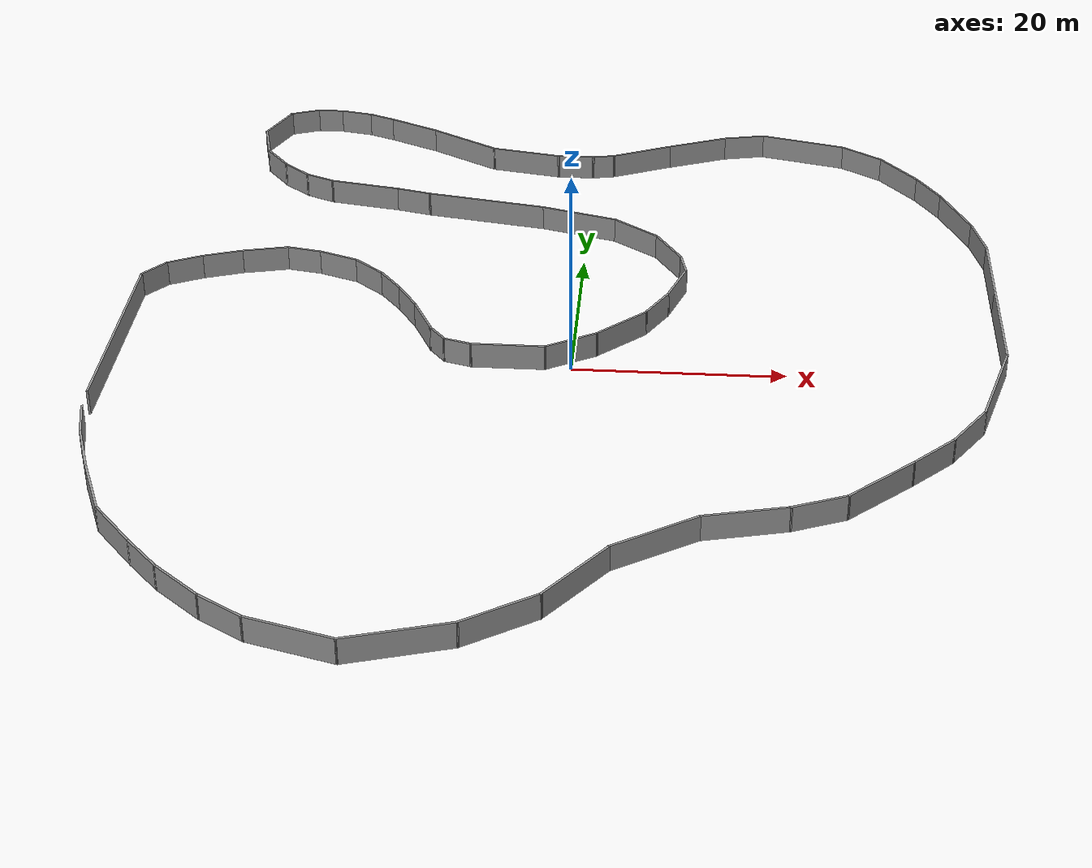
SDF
<?xml version='1.0'?>
<sdf version='1.4'>
  <model name='CircuitoFinalLinea'>
    <link name='Wall_10'>
      <collision name='Wall_10_Collision'>
        <geometry>
          <box>
            <size>4.27377 0.2 2.5</size>
          </box>
        </geometry>
        <pose>0 0 1.25 0 -0 0</pose>
      </collision>
      <visual name='Wall_10_Visual'>
        <pose>0 0 1.25 0 -0 0</pose>
        <geometry>
          <box>
            <size>4.27377 0.2 2.5</size>
          </box>
        </geometry>
        <material>
          <script>
            <uri>file://media/materials/scripts/gazebo.material</uri>
            <name>Gazebo/Grey</name>
          </script>
        </material>
      </visual>
      <velocity_decay>
        <linear>0</linear>
        <angular>0</angular>
      </velocity_decay>
      <pose>-24.2212 15.5872 0 0 0 -0.355636</pose>
    </link>
    <link name='Wall_11'>
      <collision name='Wall_11_Collision'>
        <geometry>
          <box>
            <size>3.99305 0.2 2.5</size>
          </box>
        </geometry>
        <pose>0 0 1.25 0 -0 0</pose>
      </collision>
      <visual name='Wall_11_Visual'>
        <pose>0 0 1.25 0 -0 0</pose>
        <geometry>
          <box>
            <size>3.99305 0.2 2.5</size>
          </box>
        </geometry>
        <material>
          <script>
            <uri>file://media/materials/scripts/gazebo.material</uri>
            <name>Gazebo/Grey</name>
          </script>
        </material>
      </visual>
      <velocity_decay>
        <linear>0</linear>
        <angular>0</angular>
      </velocity_decay>
      <pose>-20.8661 13.6505 0 0 0 -0.703946</pose>
    </link>
    <link name='Wall_12'>
      <collision name='Wall_12_Collision'>
        <geometry>
          <box>
            <size>3.58286 0.2 2.5</size>
          </box>
        </geometry>
        <pose>0 0 1.25 0 -0 0</pose>
      </collision>
      <visual name='Wall_12_Visual'>
        <pose>0 0 1.25 0 -0 0</pose>
        <geometry>
          <box>
            <size>3.58286 0.2 2.5</size>
          </box>
        </geometry>
        <material>
          <script>
            <uri>file://media/materials/scripts/gazebo.material</uri>
            <name>Gazebo/Grey</name>
          </script>
        </material>
      </visual>
      <velocity_decay>
        <linear>0</linear>
        <angular>0</angular>
      </velocity_decay>
      <pose>-18.3838 11.0864 0 0 0 -0.911168</pose>
    </link>
    <link name='Wall_13'>
      <collision name='Wall_13_Collision'>
        <geometry>
          <box>
            <size>3.8027 0.2 2.5</size>
          </box>
        </geometry>
        <pose>0 0 1.25 0 -0 0</pose>
      </collision>
      <visual name='Wall_13_Visual'>
        <pose>0 0 1.25 0 -0 0</pose>
        <geometry>
          <box>
            <size>3.8027 0.2 2.5</size>
          </box>
        </geometry>
        <material>
          <script>
            <uri>file://media/materials/scripts/gazebo.material</uri>
            <name>Gazebo/Grey</name>
          </script>
        </material>
      </visual>
      <velocity_decay>
        <linear>0</linear>
        <angular>0</angular>
      </velocity_decay>
      <pose>-16.3925 8.22225 0 0 0 -1.0122</pose>
    </link>
    <link name='Wall_14'>
      <collision name='Wall_14_Collision'>
        <geometry>
          <box>
            <size>4.90979 0.2 2.5</size>
          </box>
        </geometry>
        <pose>0 0 1.25 0 -0 0</pose>
      </collision>
      <visual name='Wall_14_Visual'>
        <pose>0 0 1.25 0 -0 0</pose>
        <geometry>
          <box>
            <size>4.90979 0.2 2.5</size>
          </box>
        </geometry>
        <material>
          <script>
            <uri>file://media/materials/scripts/gazebo.material</uri>
            <name>Gazebo/Grey</name>
          </script>
        </material>
      </visual>
      <velocity_decay>
        <linear>0</linear>
        <angular>0</angular>
      </velocity_decay>
      <pose>-14.4286 4.56705 0 0 0 -1.12787</pose>
    </link>
    <link name='Wall_15'>
      <collision name='Wall_15_Collision'>
        <geometry>
          <box>
            <size>2.5686 0.2 2.5</size>
          </box>
        </geometry>
        <pose>0 0 1.25 0 -0 0</pose>
      </collision>
      <visual name='Wall_15_Visual'>
        <pose>0 0 1.25 0 -0 0</pose>
        <geometry>
          <box>
            <size>2.5686 0.2 2.5</size>
          </box>
        </geometry>
        <material>
          <script>
            <uri>file://media/materials/scripts/gazebo.material</uri>
            <name>Gazebo/Grey</name>
          </script>
        </material>
      </visual>
      <velocity_decay>
        <linear>0</linear>
        <angular>0</angular>
      </velocity_decay>
      <pose>-12.6828 1.51197 0 0 0 -0.899652</pose>
    </link>
    <link name='Wall_16'>
      <collision name='Wall_16_Collision'>
        <geometry>
          <box>
            <size>2.87543 0.2 2.5</size>
          </box>
        </geometry>
        <pose>0 0 1.25 0 -0 0</pose>
      </collision>
      <visual name='Wall_16_Visual'>
        <pose>0 0 1.25 0 -0 0</pose>
        <geometry>
          <box>
            <size>2.87543 0.2 2.5</size>
          </box>
        </geometry>
        <material>
          <script>
            <uri>file://media/materials/scripts/gazebo.material</uri>
            <name>Gazebo/Grey</name>
          </script>
        </material>
      </visual>
      <velocity_decay>
        <linear>0</linear>
        <angular>0</angular>
      </velocity_decay>
      <pose>-10.6643 0.202643 0 0 0 -0.289504</pose>
    </link>
    <link name='Wall_17'>
      <collision name='Wall_17_Collision'>
        <geometry>
          <box>
            <size>7.1285 0.2 2.5</size>
          </box>
        </geometry>
        <pose>0 0 1.25 0 -0 0</pose>
      </collision>
      <visual name='Wall_17_Visual'>
        <pose>0 0 1.25 0 -0 0</pose>
        <geometry>
          <box>
            <size>7.1285 0.2 2.5</size>
          </box>
        </geometry>
        <material>
          <script>
            <uri>file://media/materials/scripts/gazebo.material</uri>
            <name>Gazebo/Grey</name>
          </script>
        </material>
      </visual>
      <velocity_decay>
        <linear>0</linear>
        <angular>0</angular>
      </velocity_decay>
      <pose>-5.91796 -0.179243 0 0 -0 0</pose>
    </link>
    <link name='Wall_18'>
      <collision name='Wall_18_Collision'>
        <geometry>
          <box>
            <size>5.55252 0.2 2.5</size>
          </box>
        </geometry>
        <pose>0 0 1.25 0 -0 0</pose>
      </collision>
      <visual name='Wall_18_Visual'>
        <pose>0 0 1.25 0 -0 0</pose>
        <geometry>
          <box>
            <size>5.55252 0.2 2.5</size>
          </box>
        </geometry>
        <material>
          <script>
            <uri>file://media/materials/scripts/gazebo.material</uri>
            <name>Gazebo/Grey</name>
          </script>
        </material>
      </visual>
      <velocity_decay>
        <linear>0</linear>
        <angular>0</angular>
      </velocity_decay>
      <pose>-0.135118 1.15736 0 0 -0 0.522939</pose>
    </link>
    <link name='Wall_19'>
      <collision name='Wall_19_Collision'>
        <geometry>
          <box>
            <size>6.33666 0.2 2.5</size>
          </box>
        </geometry>
        <pose>0 0 1.25 0 -0 0</pose>
      </collision>
      <visual name='Wall_19_Visual'>
        <pose>0 0 1.25 0 -0 0</pose>
        <geometry>
          <box>
            <size>6.33666 0.2 2.5</size>
          </box>
        </geometry>
        <material>
          <script>
            <uri>file://media/materials/scripts/gazebo.material</uri>
            <name>Gazebo/Grey</name>
          </script>
        </material>
      </visual>
      <velocity_decay>
        <linear>0</linear>
        <angular>0</angular>
      </velocity_decay>
      <pose>4.42023 4.59433 0 0 -0 0.753962</pose>
    </link>
    <link name='Wall_2'>
      <collision name='Wall_2_Collision'>
        <geometry>
          <box>
            <size>21.387 0.2 2.5</size>
          </box>
        </geometry>
        <pose>0 0 1.25 0 -0 0</pose>
      </collision>
      <visual name='Wall_2_Visual'>
        <pose>0 0 1.25 0 -0 0</pose>
        <geometry>
          <box>
            <size>21.387 0.2 2.5</size>
          </box>
        </geometry>
        <material>
          <script>
            <uri>file://media/materials/scripts/gazebo.material</uri>
            <name>Gazebo/Grey</name>
          </script>
        </material>
      </visual>
      <velocity_decay>
        <linear>0</linear>
        <angular>0</angular>
      </velocity_decay>
      <pose>-42.9177 -0.013716 0 0 -0 1.5708</pose>
    </link>
    <link name='Wall_20'>
      <collision name='Wall_20_Collision'>
        <geometry>
          <box>
            <size>4.31349 0.2 2.5</size>
          </box>
        </geometry>
        <pose>0 0 1.25 0 -0 0</pose>
      </collision>
      <visual name='Wall_20_Visual'>
        <pose>0 0 1.25 0 -0 0</pose>
        <geometry>
          <box>
            <size>4.31349 0.2 2.5</size>
          </box>
        </geometry>
        <material>
          <script>
            <uri>file://media/materials/scripts/gazebo.material</uri>
            <name>Gazebo/Grey</name>
          </script>
        </material>
      </visual>
      <velocity_decay>
        <linear>0</linear>
        <angular>0</angular>
      </velocity_decay>
      <pose>7.66461 8.48772 0 0 -0 1.05881</pose>
    </link>
    <link name='Wall_21'>
      <collision name='Wall_21_Collision'>
        <geometry>
          <box>
            <size>5.14884 0.2 2.5</size>
          </box>
        </geometry>
        <pose>0 0 1.25 0 -0 0</pose>
      </collision>
      <visual name='Wall_21_Visual'>
        <pose>0 0 1.25 0 -0 0</pose>
        <geometry>
          <box>
            <size>5.14884 0.2 2.5</size>
          </box>
        </geometry>
        <material>
          <script>
            <uri>file://media/materials/scripts/gazebo.material</uri>
            <name>Gazebo/Grey</name>
          </script>
        </material>
      </visual>
      <velocity_decay>
        <linear>0</linear>
        <angular>0</angular>
      </velocity_decay>
      <pose>9.48327 12.6185 0 0 -0 1.23685</pose>
    </link>
    <link name='Wall_22'>
      <collision name='Wall_22_Collision'>
        <geometry>
          <box>
            <size>2.96367 0.2 2.5</size>
          </box>
        </geometry>
        <pose>0 0 1.25 0 -0 0</pose>
      </collision>
      <visual name='Wall_22_Visual'>
        <pose>0 0 1.25 0 -0 0</pose>
        <geometry>
          <box>
            <size>2.96367 0.2 2.5</size>
          </box>
        </geometry>
        <material>
          <script>
            <uri>file://media/materials/scripts/gazebo.material</uri>
            <name>Gazebo/Grey</name>
          </script>
        </material>
      </visual>
      <velocity_decay>
        <linear>0</linear>
        <angular>0</angular>
      </velocity_decay>
      <pose>10.0178 16.3101 0 0 -0 1.77228</pose>
    </link>
    <link name='Wall_23'>
      <collision name='Wall_23_Collision'>
        <geometry>
          <box>
            <size>5.08095 0.2 2.5</size>
          </box>
        </geometry>
        <pose>0 0 1.25 0 -0 0</pose>
      </collision>
      <visual name='Wall_23_Visual'>
        <pose>0 0 1.25 0 -0 0</pose>
        <geometry>
          <box>
            <size>5.08095 0.2 2.5</size>
          </box>
        </geometry>
        <material>
          <script>
            <uri>file://media/materials/scripts/gazebo.material</uri>
            <name>Gazebo/Grey</name>
          </script>
        </material>
      </visual>
      <velocity_decay>
        <linear>0</linear>
        <angular>0</angular>
      </velocity_decay>
      <pose>8.47327 19.7492 0 0 -0 2.11712</pose>
    </link>
    <link name='Wall_24'>
      <collision name='Wall_24_Collision'>
        <geometry>
          <box>
            <size>5.59869 0.2 2.5</size>
          </box>
        </geometry>
        <pose>0 0 1.25 0 -0 0</pose>
      </collision>
      <visual name='Wall_24_Visual'>
        <pose>0 0 1.25 0 -0 0</pose>
        <geometry>
          <box>
            <size>5.59869 0.2 2.5</size>
          </box>
        </geometry>
        <material>
          <script>
            <uri>file://media/materials/scripts/gazebo.material</uri>
            <name>Gazebo/Grey</name>
          </script>
        </material>
      </visual>
      <velocity_decay>
        <linear>0</linear>
        <angular>0</angular>
      </velocity_decay>
      <pose>5.02855 23.4307 0 0 -0 2.50884</pose>
    </link>
    <link name='Wall_25'>
      <collision name='Wall_25_Collision'>
        <geometry>
          <box>
            <size>8.05381 0.2 2.5</size>
          </box>
        </geometry>
        <pose>0 0 1.25 0 -0 0</pose>
      </collision>
      <visual name='Wall_25_Visual'>
        <pose>0 0 1.25 0 -0 0</pose>
        <geometry>
          <box>
            <size>8.05381 0.2 2.5</size>
          </box>
        </geometry>
        <material>
          <script>
            <uri>file://media/materials/scripts/gazebo.material</uri>
            <name>Gazebo/Grey</name>
          </script>
        </material>
      </visual>
      <velocity_decay>
        <linear>0</linear>
        <angular>0</angular>
      </velocity_decay>
      <pose>-0.921271 26.1154 0 0 -0 2.86076</pose>
    </link>
    <link name='Wall_26'>
      <collision name='Wall_26_Collision'>
        <geometry>
          <box>
            <size>12.4399 0.2 2.5</size>
          </box>
        </geometry>
        <pose>0 0 1.25 0 -0 0</pose>
      </collision>
      <visual name='Wall_26_Visual'>
        <pose>0 0 1.25 0 -0 0</pose>
        <geometry>
          <box>
            <size>12.4399 0.2 2.5</size>
          </box>
        </geometry>
        <material>
          <script>
            <uri>file://media/materials/scripts/gazebo.material</uri>
            <name>Gazebo/Grey</name>
          </script>
        </material>
      </visual>
      <velocity_decay>
        <linear>0</linear>
        <angular>0</angular>
      </velocity_decay>
      <pose>-10.7167 28.2922 0 0 -0 2.9628</pose>
    </link>
    <link name='Wall_27'>
      <collision name='Wall_27_Collision'>
        <geometry>
          <box>
            <size>3.79001 0.2 2.5</size>
          </box>
        </geometry>
        <pose>0 0 1.25 0 -0 0</pose>
      </collision>
      <visual name='Wall_27_Visual'>
        <pose>0 0 1.25 0 -0 0</pose>
        <geometry>
          <box>
            <size>3.79001 0.2 2.5</size>
          </box>
        </geometry>
        <material>
          <script>
            <uri>file://media/materials/scripts/gazebo.material</uri>
            <name>Gazebo/Grey</name>
          </script>
        </material>
      </visual>
      <velocity_decay>
        <linear>0</linear>
        <angular>0</angular>
      </velocity_decay>
      <pose>-18.4805 29.8159 0 0 -0 2.89661</pose>
    </link>
    <link name='Wall_28'>
      <collision name='Wall_28_Collision'>
        <geometry>
          <box>
            <size>7.42972 0.2 2.5</size>
          </box>
        </geometry>
        <pose>0 0 1.25 0 -0 0</pose>
      </collision>
      <visual name='Wall_28_Visual'>
        <pose>0 0 1.25 0 -0 0</pose>
        <geometry>
          <box>
            <size>7.42972 0.2 2.5</size>
          </box>
        </geometry>
        <material>
          <script>
            <uri>file://media/materials/scripts/gazebo.material</uri>
            <name>Gazebo/Grey</name>
          </script>
        </material>
      </visual>
      <velocity_decay>
        <linear>0</linear>
        <angular>0</angular>
      </velocity_decay>
      <pose>-23.7773 30.9043 0 0 -0 2.95994</pose>
    </link>
    <link name='Wall_29'>
      <collision name='Wall_29_Collision'>
        <geometry>
          <box>
            <size>3.33291 0.2 2.5</size>
          </box>
        </geometry>
        <pose>0 0 1.25 0 -0 0</pose>
      </collision>
      <visual name='Wall_29_Visual'>
        <pose>0 0 1.25 0 -0 0</pose>
        <geometry>
          <box>
            <size>3.33291 0.2 2.5</size>
          </box>
        </geometry>
        <material>
          <script>
            <uri>file://media/materials/scripts/gazebo.material</uri>
            <name>Gazebo/Grey</name>
          </script>
        </material>
      </visual>
      <velocity_decay>
        <linear>0</linear>
        <angular>0</angular>
      </velocity_decay>
      <pose>-28.7688 32.1829 0 0 -0 2.73079</pose>
    </link>
    <link name='Wall_30'>
      <collision name='Wall_30_Collision'>
        <geometry>
          <box>
            <size>3.64754 0.2 2.5</size>
          </box>
        </geometry>
        <pose>0 0 1.25 0 -0 0</pose>
      </collision>
      <visual name='Wall_30_Visual'>
        <pose>0 0 1.25 0 -0 0</pose>
        <geometry>
          <box>
            <size>3.64754 0.2 2.5</size>
          </box>
        </geometry>
        <material>
          <script>
            <uri>file://media/materials/scripts/gazebo.material</uri>
            <name>Gazebo/Grey</name>
          </script>
        </material>
      </visual>
      <velocity_decay>
        <linear>0</linear>
        <angular>0</angular>
      </velocity_decay>
      <pose>-31.5292 33.9119 0 0 -0 2.44685</pose>
    </link>
    <link name='Wall_31'>
      <collision name='Wall_31_Collision'>
        <geometry>
          <box>
            <size>4.12956 0.2 2.5</size>
          </box>
        </geometry>
        <pose>0 0 1.25 0 -0 0</pose>
      </collision>
      <visual name='Wall_31_Visual'>
        <pose>0 0 1.25 0 -0 0</pose>
        <geometry>
          <box>
            <size>4.12956 0.2 2.5</size>
          </box>
        </geometry>
        <material>
          <script>
            <uri>file://media/materials/scripts/gazebo.material</uri>
            <name>Gazebo/Grey</name>
          </script>
        </material>
      </visual>
      <velocity_decay>
        <linear>0</linear>
        <angular>0</angular>
      </velocity_decay>
      <pose>-34.0673 36.5604 0 0 -0 2.23677</pose>
    </link>
    <link name='Wall_32'>
      <collision name='Wall_32_Collision'>
        <geometry>
          <box>
            <size>4.96439 0.2 2.5</size>
          </box>
        </geometry>
        <pose>0 0 1.25 0 -0 0</pose>
      </collision>
      <visual name='Wall_32_Visual'>
        <pose>0 0 1.25 0 -0 0</pose>
        <geometry>
          <box>
            <size>4.96439 0.2 2.5</size>
          </box>
        </geometry>
        <material>
          <script>
            <uri>file://media/materials/scripts/gazebo.material</uri>
            <name>Gazebo/Grey</name>
          </script>
        </material>
      </visual>
      <velocity_decay>
        <linear>0</linear>
        <angular>0</angular>
      </velocity_decay>
      <pose>-35.833 40.4228 0 0 -0 1.80454</pose>
    </link>
    <link name='Wall_33'>
      <collision name='Wall_33_Collision'>
        <geometry>
          <box>
            <size>5.24254 0.2 2.5</size>
          </box>
        </geometry>
        <pose>0 0 1.25 0 -0 0</pose>
      </collision>
      <visual name='Wall_33_Visual'>
        <pose>0 0 1.25 0 -0 0</pose>
        <geometry>
          <box>
            <size>5.24254 0.2 2.5</size>
          </box>
        </geometry>
        <material>
          <script>
            <uri>file://media/materials/scripts/gazebo.material</uri>
            <name>Gazebo/Grey</name>
          </script>
        </material>
      </visual>
      <velocity_decay>
        <linear>0</linear>
        <angular>0</angular>
      </velocity_decay>
      <pose>-35.3915 45.0576 0 0 -0 1.1659</pose>
    </link>
    <link name='Wall_34'>
      <collision name='Wall_34_Collision'>
        <geometry>
          <box>
            <size>3.27408 0.2 2.5</size>
          </box>
        </geometry>
        <pose>0 0 1.25 0 -0 0</pose>
      </collision>
      <visual name='Wall_34_Visual'>
        <pose>0 0 1.25 0 -0 0</pose>
        <geometry>
          <box>
            <size>3.27408 0.2 2.5</size>
          </box>
        </geometry>
        <material>
          <script>
            <uri>file://media/materials/scripts/gazebo.material</uri>
            <name>Gazebo/Grey</name>
          </script>
        </material>
      </visual>
      <velocity_decay>
        <linear>0</linear>
        <angular>0</angular>
      </velocity_decay>
      <pose>-32.9638 47.9268 0 0 -0 0.367174</pose>
    </link>
    <link name='Wall_35'>
      <collision name='Wall_35_Collision'>
        <geometry>
          <box>
            <size>2.84847 0.2 2.5</size>
          </box>
        </geometry>
        <pose>0 0 1.25 0 -0 0</pose>
      </collision>
      <visual name='Wall_35_Visual'>
        <pose>0 0 1.25 0 -0 0</pose>
        <geometry>
          <box>
            <size>2.84847 0.2 2.5</size>
          </box>
        </geometry>
        <material>
          <script>
            <uri>file://media/materials/scripts/gazebo.material</uri>
            <name>Gazebo/Grey</name>
          </script>
        </material>
      </visual>
      <velocity_decay>
        <linear>0</linear>
        <angular>0</angular>
      </velocity_decay>
      <pose>-30.205 48.4785 0 0 -0 0</pose>
    </link>
    <link name='Wall_36'>
      <collision name='Wall_36_Collision'>
        <geometry>
          <box>
            <size>3.57615 0.2 2.5</size>
          </box>
        </geometry>
        <pose>0 0 1.25 0 -0 0</pose>
      </collision>
      <visual name='Wall_36_Visual'>
        <pose>0 0 1.25 0 -0 0</pose>
        <geometry>
          <box>
            <size>3.57615 0.2 2.5</size>
          </box>
        </geometry>
        <material>
          <script>
            <uri>file://media/materials/scripts/gazebo.material</uri>
            <name>Gazebo/Grey</name>
          </script>
        </material>
      </visual>
      <velocity_decay>
        <linear>0</linear>
        <angular>0</angular>
      </velocity_decay>
      <pose>-27.2254 48.1475 0 0 0 -0.197396</pose>
    </link>
    <link name='Wall_37'>
      <collision name='Wall_37_Collision'>
        <geometry>
          <box>
            <size>3.06918 0.2 2.5</size>
          </box>
        </geometry>
        <pose>0 0 1.25 0 -0 0</pose>
      </collision>
      <visual name='Wall_37_Visual'>
        <pose>0 0 1.25 0 -0 0</pose>
        <geometry>
          <box>
            <size>3.06918 0.2 2.5</size>
          </box>
        </geometry>
        <material>
          <script>
            <uri>file://media/materials/scripts/gazebo.material</uri>
            <name>Gazebo/Grey</name>
          </script>
        </material>
      </visual>
      <velocity_decay>
        <linear>0</linear>
        <angular>0</angular>
      </velocity_decay>
      <pose>-24.2459 47.2646 0 0 0 -0.394791</pose>
    </link>
    <link name='Wall_38'>
      <collision name='Wall_38_Collision'>
        <geometry>
          <box>
            <size>5.82692 0.2 2.5</size>
          </box>
        </geometry>
        <pose>0 0 1.25 0 -0 0</pose>
      </collision>
      <visual name='Wall_38_Visual'>
        <pose>0 0 1.25 0 -0 0</pose>
        <geometry>
          <box>
            <size>5.82692 0.2 2.5</size>
          </box>
        </geometry>
        <material>
          <script>
            <uri>file://media/materials/scripts/gazebo.material</uri>
            <name>Gazebo/Grey</name>
          </script>
        </material>
      </visual>
      <velocity_decay>
        <linear>0</linear>
        <angular>0</angular>
      </velocity_decay>
      <pose>-20.3835 45.499 0 0 0 -0.446106</pose>
    </link>
    <link name='Wall_39'>
      <collision name='Wall_39_Collision'>
        <geometry>
          <box>
            <size>8.11162 0.2 2.5</size>
          </box>
        </geometry>
        <pose>0 0 1.25 0 -0 0</pose>
      </collision>
      <visual name='Wall_39_Visual'>
        <pose>0 0 1.25 0 -0 0</pose>
        <geometry>
          <box>
            <size>8.11162 0.2 2.5</size>
          </box>
        </geometry>
        <material>
          <script>
            <uri>file://media/materials/scripts/gazebo.material</uri>
            <name>Gazebo/Grey</name>
          </script>
        </material>
      </visual>
      <velocity_decay>
        <linear>0</linear>
        <angular>0</angular>
      </velocity_decay>
      <pose>-14.4245 42.2988 0 0 0 -0.526066</pose>
    </link>
    <link name='Wall_40'>
      <collision name='Wall_40_Collision'>
        <geometry>
          <box>
            <size>7.38566 0.2 2.5</size>
          </box>
        </geometry>
        <pose>0 0 1.25 0 -0 0</pose>
      </collision>
      <visual name='Wall_40_Visual'>
        <pose>0 0 1.25 0 -0 0</pose>
        <geometry>
          <box>
            <size>7.38566 0.2 2.5</size>
          </box>
        </geometry>
        <material>
          <script>
            <uri>file://media/materials/scripts/gazebo.material</uri>
            <name>Gazebo/Grey</name>
          </script>
        </material>
      </visual>
      <velocity_decay>
        <linear>0</linear>
        <angular>0</angular>
      </velocity_decay>
      <pose>-7.47225 39.6503 0 0 0 -0.185348</pose>
    </link>
    <link name='Wall_41'>
      <collision name='Wall_41_Collision'>
        <geometry>
          <box>
            <size>3.952 0.2 2.5</size>
          </box>
        </geometry>
        <pose>0 0 1.25 0 -0 0</pose>
      </collision>
      <visual name='Wall_41_Visual'>
        <pose>0 0 1.25 0 -0 0</pose>
        <geometry>
          <box>
            <size>3.952 0.2 2.5</size>
          </box>
        </geometry>
        <material>
          <script>
            <uri>file://media/materials/scripts/gazebo.material</uri>
            <name>Gazebo/Grey</name>
          </script>
        </material>
      </visual>
      <velocity_decay>
        <linear>0</linear>
        <angular>0</angular>
      </velocity_decay>
      <pose>-2.06495 38.9882 0 0 -0 0</pose>
    </link>
    <link name='Wall_42'>
      <collision name='Wall_42_Collision'>
        <geometry>
          <box>
            <size>2.45077 0.2 2.5</size>
          </box>
        </geometry>
        <pose>0 0 1.25 0 -0 0</pose>
      </collision>
      <visual name='Wall_42_Visual'>
        <pose>0 0 1.25 0 -0 0</pose>
        <geometry>
          <box>
            <size>2.45077 0.2 2.5</size>
          </box>
        </geometry>
        <material>
          <script>
            <uri>file://media/materials/scripts/gazebo.material</uri>
            <name>Gazebo/Grey</name>
          </script>
        </material>
      </visual>
      <velocity_decay>
        <linear>0</linear>
        <angular>0</angular>
      </velocity_decay>
      <pose>0.91458 39.2089 0 0 -0 0.197396</pose>
    </link>
    <link name='Wall_43'>
      <collision name='Wall_43_Collision'>
        <geometry>
          <box>
            <size>6.7211 0.2 2.5</size>
          </box>
        </geometry>
        <pose>0 0 1.25 0 -0 0</pose>
      </collision>
      <visual name='Wall_43_Visual'>
        <pose>0 0 1.25 0 -0 0</pose>
        <geometry>
          <box>
            <size>6.7211 0.2 2.5</size>
          </box>
        </geometry>
        <material>
          <script>
            <uri>file://media/materials/scripts/gazebo.material</uri>
            <name>Gazebo/Grey</name>
          </script>
        </material>
      </visual>
      <velocity_decay>
        <linear>0</linear>
        <angular>0</angular>
      </velocity_decay>
      <pose>4.99764 40.7538 0 0 -0 0.418224</pose>
    </link>
    <link name='Wall_44'>
      <collision name='Wall_44_Collision'>
        <geometry>
          <box>
            <size>6.63463 0.2 2.5</size>
          </box>
        </geometry>
        <pose>0 0 1.25 0 -0 0</pose>
      </collision>
      <visual name='Wall_44_Visual'>
        <pose>0 0 1.25 0 -0 0</pose>
        <geometry>
          <box>
            <size>6.63463 0.2 2.5</size>
          </box>
        </geometry>
        <material>
          <script>
            <uri>file://media/materials/scripts/gazebo.material</uri>
            <name>Gazebo/Grey</name>
          </script>
        </material>
      </visual>
      <velocity_decay>
        <linear>0</linear>
        <angular>0</angular>
      </velocity_decay>
      <pose>10.9567 43.2919 0 0 -0 0.386876</pose>
    </link>
    <link name='Wall_45'>
      <collision name='Wall_45_Collision'>
        <geometry>
          <box>
            <size>4.48533 0.2 2.5</size>
          </box>
        </geometry>
        <pose>0 0 1.25 0 -0 0</pose>
      </collision>
      <visual name='Wall_45_Visual'>
        <pose>0 0 1.25 0 -0 0</pose>
        <geometry>
          <box>
            <size>4.48533 0.2 2.5</size>
          </box>
        </geometry>
        <material>
          <script>
            <uri>file://media/materials/scripts/gazebo.material</uri>
            <name>Gazebo/Grey</name>
          </script>
        </material>
      </visual>
      <velocity_decay>
        <linear>0</linear>
        <angular>0</angular>
      </velocity_decay>
      <pose>16.0329 44.9472 0 0 -0 0.207496</pose>
    </link>
    <link name='Wall_46'>
      <collision name='Wall_46_Collision'>
        <geometry>
          <box>
            <size>9.08598 0.2 2.5</size>
          </box>
        </geometry>
        <pose>0 0 1.25 0 -0 0</pose>
      </collision>
      <visual name='Wall_46_Visual'>
        <pose>0 0 1.25 0 -0 0</pose>
        <geometry>
          <box>
            <size>9.08598 0.2 2.5</size>
          </box>
        </geometry>
        <material>
          <script>
            <uri>file://media/materials/scripts/gazebo.material</uri>
            <name>Gazebo/Grey</name>
          </script>
        </material>
      </visual>
      <velocity_decay>
        <linear>0</linear>
        <angular>0</angular>
      </velocity_decay>
      <pose>22.4334 44.2851 0 0 0 -0.251003</pose>
    </link>
    <link name='Wall_47'>
      <collision name='Wall_47_Collision'>
        <geometry>
          <box>
            <size>4.9746 0.2 2.5</size>
          </box>
        </geometry>
        <pose>0 0 1.25 0 -0 0</pose>
      </collision>
      <visual name='Wall_47_Visual'>
        <pose>0 0 1.25 0 -0 0</pose>
        <geometry>
          <box>
            <size>4.9746 0.2 2.5</size>
          </box>
        </geometry>
        <material>
          <script>
            <uri>file://media/materials/scripts/gazebo.material</uri>
            <name>Gazebo/Grey</name>
          </script>
        </material>
      </visual>
      <velocity_decay>
        <linear>0</linear>
        <angular>0</angular>
      </velocity_decay>
      <pose>28.7235 41.8574 0 0 0 -0.588003</pose>
    </link>
    <link name='Wall_48'>
      <collision name='Wall_48_Collision'>
        <geometry>
          <box>
            <size>5.85283 0.2 2.5</size>
          </box>
        </geometry>
        <pose>0 0 1.25 0 -0 0</pose>
      </collision>
      <visual name='Wall_48_Visual'>
        <pose>0 0 1.25 0 -0 0</pose>
        <geometry>
          <box>
            <size>5.85283 0.2 2.5</size>
          </box>
        </geometry>
        <material>
          <script>
            <uri>file://media/materials/scripts/gazebo.material</uri>
            <name>Gazebo/Grey</name>
          </script>
        </material>
      </visual>
      <velocity_decay>
        <linear>0</linear>
        <angular>0</angular>
      </velocity_decay>
      <pose>32.4755 38.3261 0 0 0 -0.896055</pose>
    </link>
    <link name='Wall_49'>
      <collision name='Wall_49_Collision'>
        <geometry>
          <box>
            <size>4.553 0.2 2.5</size>
          </box>
        </geometry>
        <pose>0 0 1.25 0 -0 0</pose>
      </collision>
      <visual name='Wall_49_Visual'>
        <pose>0 0 1.25 0 -0 0</pose>
        <geometry>
          <box>
            <size>4.553 0.2 2.5</size>
          </box>
        </geometry>
        <material>
          <script>
            <uri>file://media/materials/scripts/gazebo.material</uri>
            <name>Gazebo/Grey</name>
          </script>
        </material>
      </visual>
      <velocity_decay>
        <linear>0</linear>
        <angular>0</angular>
      </velocity_decay>
      <pose>35.3447 34.243 0 0 0 -1.03907</pose>
    </link>
    <link name='Wall_5'>
      <collision name='Wall_5_Collision'>
        <geometry>
          <box>
            <size>3.34455 0.2 2.5</size>
          </box>
        </geometry>
        <pose>0 0 1.25 0 -0 0</pose>
      </collision>
      <visual name='Wall_5_Visual'>
        <pose>0 0 1.25 0 -0 0</pose>
        <geometry>
          <box>
            <size>3.34455 0.2 2.5</size>
          </box>
        </geometry>
        <material>
          <script>
            <uri>file://media/materials/scripts/gazebo.material</uri>
            <name>Gazebo/Grey</name>
          </script>
        </material>
      </visual>
      <velocity_decay>
        <linear>0</linear>
        <angular>0</angular>
      </velocity_decay>
      <pose>-41.9226 11.8161 0 0 -0 0.875205</pose>
    </link>
    <link name='Wall_50'>
      <collision name='Wall_50_Collision'>
        <geometry>
          <box>
            <size>6.92338 0.2 2.5</size>
          </box>
        </geometry>
        <pose>0 0 1.25 0 -0 0</pose>
      </collision>
      <visual name='Wall_50_Visual'>
        <pose>0 0 1.25 0 -0 0</pose>
        <geometry>
          <box>
            <size>6.92338 0.2 2.5</size>
          </box>
        </geometry>
        <material>
          <script>
            <uri>file://media/materials/scripts/gazebo.material</uri>
            <name>Gazebo/Grey</name>
          </script>
        </material>
      </visual>
      <velocity_decay>
        <linear>0</linear>
        <angular>0</angular>
      </velocity_decay>
      <pose>37.7725 29.2771 0 0 0 -1.1659</pose>
    </link>
    <link name='Wall_51'>
      <collision name='Wall_51_Collision'>
        <geometry>
          <box>
            <size>4.96439 0.2 2.5</size>
          </box>
        </geometry>
        <pose>0 0 1.25 0 -0 0</pose>
      </collision>
      <visual name='Wall_51_Visual'>
        <pose>0 0 1.25 0 -0 0</pose>
        <geometry>
          <box>
            <size>4.96439 0.2 2.5</size>
          </box>
        </geometry>
        <material>
          <script>
            <uri>file://media/materials/scripts/gazebo.material</uri>
            <name>Gazebo/Grey</name>
          </script>
        </material>
      </visual>
      <velocity_decay>
        <linear>0</linear>
        <angular>0</angular>
      </velocity_decay>
      <pose>39.6485 23.8698 0 0 0 -1.33705</pose>
    </link>
    <link name='Wall_52'>
      <collision name='Wall_52_Collision'>
        <geometry>
          <box>
            <size>8.80753 0.2 2.5</size>
          </box>
        </geometry>
        <pose>0 0 1.25 0 -0 0</pose>
      </collision>
      <visual name='Wall_52_Visual'>
        <pose>0 0 1.25 0 -0 0</pose>
        <geometry>
          <box>
            <size>8.80753 0.2 2.5</size>
          </box>
        </geometry>
        <material>
          <script>
            <uri>file://media/materials/scripts/gazebo.material</uri>
            <name>Gazebo/Grey</name>
          </script>
        </material>
      </visual>
      <velocity_decay>
        <linear>0</linear>
        <angular>0</angular>
      </velocity_decay>
      <pose>40.2002 17.2486 0 0 0 -1.5708</pose>
    </link>
    <link name='Wall_53'>
      <collision name='Wall_53_Collision'>
        <geometry>
          <box>
            <size>11.8974 0.2 2.5</size>
          </box>
        </geometry>
        <pose>0 0 1.25 0 -0 0</pose>
      </collision>
      <visual name='Wall_53_Visual'>
        <pose>0 0 1.25 0 -0 0</pose>
        <geometry>
          <box>
            <size>11.8974 0.2 2.5</size>
          </box>
        </geometry>
        <material>
          <script>
            <uri>file://media/materials/scripts/gazebo.material</uri>
            <name>Gazebo/Grey</name>
          </script>
        </material>
      </visual>
      <velocity_decay>
        <linear>0</linear>
        <angular>0</angular>
      </velocity_decay>
      <pose>40.2002 7.09617 0 0 0 -1.5708</pose>
    </link>
    <link name='Wall_54'>
      <collision name='Wall_54_Collision'>
        <geometry>
          <box>
            <size>10.326 0.2 2.5</size>
          </box>
        </geometry>
        <pose>0 0 1.25 0 -0 0</pose>
      </collision>
      <visual name='Wall_54_Visual'>
        <pose>0 0 1.25 0 -0 0</pose>
        <geometry>
          <box>
            <size>10.326 0.2 2.5</size>
          </box>
        </geometry>
        <material>
          <script>
            <uri>file://media/materials/scripts/gazebo.material</uri>
            <name>Gazebo/Grey</name>
          </script>
        </material>
      </visual>
      <velocity_decay>
        <linear>0</linear>
        <angular>0</angular>
      </velocity_decay>
      <pose>38.7656 -3.60806 0 0 0 -1.85808</pose>
    </link>
    <link name='Wall_55'>
      <collision name='Wall_55_Collision'>
        <geometry>
          <box>
            <size>5.77036 0.2 2.5</size>
          </box>
        </geometry>
        <pose>0 0 1.25 0 -0 0</pose>
      </collision>
      <visual name='Wall_55_Visual'>
        <pose>0 0 1.25 0 -0 0</pose>
        <geometry>
          <box>
            <size>5.77036 0.2 2.5</size>
          </box>
        </geometry>
        <material>
          <script>
            <uri>file://media/materials/scripts/gazebo.material</uri>
            <name>Gazebo/Grey</name>
          </script>
        </material>
      </visual>
      <velocity_decay>
        <linear>0</linear>
        <angular>0</angular>
      </velocity_decay>
      <pose>35.7861 -10.781 0 0 0 -2.1588</pose>
    </link>
    <link name='Wall_56'>
      <collision name='Wall_56_Collision'>
        <geometry>
          <box>
            <size>5.50613 0.2 2.5</size>
          </box>
        </geometry>
        <pose>0 0 1.25 0 -0 0</pose>
      </collision>
      <visual name='Wall_56_Visual'>
        <pose>0 0 1.25 0 -0 0</pose>
        <geometry>
          <box>
            <size>5.50613 0.2 2.5</size>
          </box>
        </geometry>
        <material>
          <script>
            <uri>file://media/materials/scripts/gazebo.material</uri>
            <name>Gazebo/Grey</name>
          </script>
        </material>
      </visual>
      <velocity_decay>
        <linear>0</linear>
        <angular>0</angular>
      </velocity_decay>
      <pose>32.3652 -14.9744 0 0 0 -2.35619</pose>
    </link>
    <link name='Wall_57'>
      <collision name='Wall_57_Collision'>
        <geometry>
          <box>
            <size>8.00937 0.2 2.5</size>
          </box>
        </geometry>
        <pose>0 0 1.25 0 -0 0</pose>
      </collision>
      <visual name='Wall_57_Visual'>
        <pose>0 0 1.25 0 -0 0</pose>
        <geometry>
          <box>
            <size>8.00937 0.2 2.5</size>
          </box>
        </geometry>
        <material>
          <script>
            <uri>file://media/materials/scripts/gazebo.material</uri>
            <name>Gazebo/Grey</name>
          </script>
        </material>
      </visual>
      <velocity_decay>
        <linear>0</linear>
        <angular>0</angular>
      </velocity_decay>
      <pose>27.62 -19.4989 0 0 0 -2.39617</pose>
    </link>
    <link name='Wall_58'>
      <collision name='Wall_58_Collision'>
        <geometry>
          <box>
            <size>5.44612 0.2 2.5</size>
          </box>
        </geometry>
        <pose>0 0 1.25 0 -0 0</pose>
      </collision>
      <visual name='Wall_58_Visual'>
        <pose>0 0 1.25 0 -0 0</pose>
        <geometry>
          <box>
            <size>5.44612 0.2 2.5</size>
          </box>
        </geometry>
        <material>
          <script>
            <uri>file://media/materials/scripts/gazebo.material</uri>
            <name>Gazebo/Grey</name>
          </script>
        </material>
      </visual>
      <velocity_decay>
        <linear>0</linear>
        <angular>0</angular>
      </velocity_decay>
      <pose>22.3231 -23.1405 0 0 0 -2.75327</pose>
    </link>
    <link name='Wall_59'>
      <collision name='Wall_59_Collision'>
        <geometry>
          <box>
            <size>7.90893 0.2 2.5</size>
          </box>
        </geometry>
        <pose>0 0 1.25 0 -0 0</pose>
      </collision>
      <visual name='Wall_59_Visual'>
        <pose>0 0 1.25 0 -0 0</pose>
        <geometry>
          <box>
            <size>7.90893 0.2 2.5</size>
          </box>
        </geometry>
        <material>
          <script>
            <uri>file://media/materials/scripts/gazebo.material</uri>
            <name>Gazebo/Grey</name>
          </script>
        </material>
      </visual>
      <velocity_decay>
        <linear>0</linear>
        <angular>0</angular>
      </velocity_decay>
      <pose>16.1433 -25.0165 0 0 0 -2.9105</pose>
    </link>
    <link name='Wall_6'>
      <collision name='Wall_6_Collision'>
        <geometry>
          <box>
            <size>3.78656 0.2 2.5</size>
          </box>
        </geometry>
        <pose>0 0 1.25 0 -0 0</pose>
      </collision>
      <visual name='Wall_6_Visual'>
        <pose>0 0 1.25 0 -0 0</pose>
        <geometry>
          <box>
            <size>3.78656 0.2 2.5</size>
          </box>
        </geometry>
        <material>
          <script>
            <uri>file://media/materials/scripts/gazebo.material</uri>
            <name>Gazebo/Grey</name>
          </script>
        </material>
      </visual>
      <velocity_decay>
        <linear>0</linear>
        <angular>0</angular>
      </velocity_decay>
      <pose>-39.3057 13.8141 0 0 -0 0.456845</pose>
    </link>
    <link name='Wall_60'>
      <collision name='Wall_60_Collision'>
        <geometry>
          <box>
            <size>8.83296 0.2 2.5</size>
          </box>
        </geometry>
        <pose>0 0 1.25 0 -0 0</pose>
      </collision>
      <visual name='Wall_60_Visual'>
        <pose>0 0 1.25 0 -0 0</pose>
        <geometry>
          <box>
            <size>8.83296 0.2 2.5</size>
          </box>
        </geometry>
        <material>
          <script>
            <uri>file://media/materials/scripts/gazebo.material</uri>
            <name>Gazebo/Grey</name>
          </script>
        </material>
      </visual>
      <velocity_decay>
        <linear>0</linear>
        <angular>0</angular>
      </velocity_decay>
      <pose>8.74964 -28.2168 0 0 0 -2.57486</pose>
    </link>
    <link name='Wall_61'>
      <collision name='Wall_61_Collision'>
        <geometry>
          <box>
            <size>8.54315 0.2 2.5</size>
          </box>
        </geometry>
        <pose>0 0 1.25 0 -0 0</pose>
      </collision>
      <visual name='Wall_61_Visual'>
        <pose>0 0 1.25 0 -0 0</pose>
        <geometry>
          <box>
            <size>8.54315 0.2 2.5</size>
          </box>
        </geometry>
        <material>
          <script>
            <uri>file://media/materials/scripts/gazebo.material</uri>
            <name>Gazebo/Grey</name>
          </script>
        </material>
      </visual>
      <velocity_decay>
        <linear>0</linear>
        <angular>0</angular>
      </velocity_decay>
      <pose>2.56987 -33.8448 0 0 0 -2.22488</pose>
    </link>
    <link name='Wall_62'>
      <collision name='Wall_62_Collision'>
        <geometry>
          <box>
            <size>7.54656 0.2 2.5</size>
          </box>
        </geometry>
        <pose>0 0 1.25 0 -0 0</pose>
      </collision>
      <visual name='Wall_62_Visual'>
        <pose>0 0 1.25 0 -0 0</pose>
        <geometry>
          <box>
            <size>7.54656 0.2 2.5</size>
          </box>
        </geometry>
        <material>
          <script>
            <uri>file://media/materials/scripts/gazebo.material</uri>
            <name>Gazebo/Grey</name>
          </script>
        </material>
      </visual>
      <velocity_decay>
        <linear>0</linear>
        <angular>0</angular>
      </velocity_decay>
      <pose>-3.05813 -39.1417 0 0 0 -2.57025</pose>
    </link>
    <link name='Wall_63'>
      <collision name='Wall_63_Collision'>
        <geometry>
          <box>
            <size>9.62856 0.2 2.5</size>
          </box>
        </geometry>
        <pose>0 0 1.25 0 -0 0</pose>
      </collision>
      <visual name='Wall_63_Visual'>
        <pose>0 0 1.25 0 -0 0</pose>
        <geometry>
          <box>
            <size>9.62856 0.2 2.5</size>
          </box>
        </geometry>
        <material>
          <script>
            <uri>file://media/materials/scripts/gazebo.material</uri>
            <name>Gazebo/Grey</name>
          </script>
        </material>
      </visual>
      <velocity_decay>
        <linear>0</linear>
        <angular>0</angular>
      </velocity_decay>
      <pose>-10.6725 -42.4523 0 0 0 -2.85686</pose>
    </link>
    <link name='Wall_64'>
      <collision name='Wall_64_Collision'>
        <geometry>
          <box>
            <size>8.23382 0.2 2.5</size>
          </box>
        </geometry>
        <pose>0 0 1.25 0 -0 0</pose>
      </collision>
      <visual name='Wall_64_Visual'>
        <pose>0 0 1.25 0 -0 0</pose>
        <geometry>
          <box>
            <size>8.23382 0.2 2.5</size>
          </box>
        </geometry>
        <material>
          <script>
            <uri>file://media/materials/scripts/gazebo.material</uri>
            <name>Gazebo/Grey</name>
          </script>
        </material>
      </visual>
      <velocity_decay>
        <linear>0</linear>
        <angular>0</angular>
      </velocity_decay>
      <pose>-19.0593 -42.673 0 0 -0 2.86329</pose>
    </link>
    <link name='Wall_65'>
      <collision name='Wall_65_Collision'>
        <geometry>
          <box>
            <size>4.8558 0.2 2.5</size>
          </box>
        </geometry>
        <pose>0 0 1.25 0 -0 0</pose>
      </collision>
      <visual name='Wall_65_Visual'>
        <pose>0 0 1.25 0 -0 0</pose>
        <geometry>
          <box>
            <size>4.8558 0.2 2.5</size>
          </box>
        </geometry>
        <material>
          <script>
            <uri>file://media/materials/scripts/gazebo.material</uri>
            <name>Gazebo/Grey</name>
          </script>
        </material>
      </visual>
      <velocity_decay>
        <linear>0</linear>
        <angular>0</angular>
      </velocity_decay>
      <pose>-24.908 -40.3556 0 0 -0 2.59304</pose>
    </link>
    <link name='Wall_66'>
      <collision name='Wall_66_Collision'>
        <geometry>
          <box>
            <size>5.68222 0.2 2.5</size>
          </box>
        </geometry>
        <pose>0 0 1.25 0 -0 0</pose>
      </collision>
      <visual name='Wall_66_Visual'>
        <pose>0 0 1.25 0 -0 0</pose>
        <geometry>
          <box>
            <size>5.68222 0.2 2.5</size>
          </box>
        </geometry>
        <material>
          <script>
            <uri>file://media/materials/scripts/gazebo.material</uri>
            <name>Gazebo/Grey</name>
          </script>
        </material>
      </visual>
      <velocity_decay>
        <linear>0</linear>
        <angular>0</angular>
      </velocity_decay>
      <pose>-28.9911 -37.3761 0 0 -0 2.4417</pose>
    </link>
    <link name='Wall_67'>
      <collision name='Wall_67_Collision'>
        <geometry>
          <box>
            <size>4.41658 0.2 2.5</size>
          </box>
        </geometry>
        <pose>0 0 1.25 0 -0 0</pose>
      </collision>
      <visual name='Wall_67_Visual'>
        <pose>0 0 1.25 0 -0 0</pose>
        <geometry>
          <box>
            <size>4.41658 0.2 2.5</size>
          </box>
        </geometry>
        <material>
          <script>
            <uri>file://media/materials/scripts/gazebo.material</uri>
            <name>Gazebo/Grey</name>
          </script>
        </material>
      </visual>
      <velocity_decay>
        <linear>0</linear>
        <angular>0</angular>
      </velocity_decay>
      <pose>-32.5224 -34.0655 0 0 -0 2.31917</pose>
    </link>
    <link name='Wall_68'>
      <collision name='Wall_68_Collision'>
        <geometry>
          <box>
            <size>5.99327 0.2 2.5</size>
          </box>
        </geometry>
        <pose>0 0 1.25 0 -0 0</pose>
      </collision>
      <visual name='Wall_68_Visual'>
        <pose>0 0 1.25 0 -0 0</pose>
        <geometry>
          <box>
            <size>5.99327 0.2 2.5</size>
          </box>
        </geometry>
        <material>
          <script>
            <uri>file://media/materials/scripts/gazebo.material</uri>
            <name>Gazebo/Grey</name>
          </script>
        </material>
      </visual>
      <velocity_decay>
        <linear>0</linear>
        <angular>0</angular>
      </velocity_decay>
      <pose>-35.833 -30.3135 0 0 -0 2.27529</pose>
    </link>
    <link name='Wall_69'>
      <collision name='Wall_69_Collision'>
        <geometry>
          <box>
            <size>6.63463 0.2 2.5</size>
          </box>
        </geometry>
        <pose>0 0 1.25 0 -0 0</pose>
      </collision>
      <visual name='Wall_69_Visual'>
        <pose>0 0 1.25 0 -0 0</pose>
        <geometry>
          <box>
            <size>6.63463 0.2 2.5</size>
          </box>
        </geometry>
        <material>
          <script>
            <uri>file://media/materials/scripts/gazebo.material</uri>
            <name>Gazebo/Grey</name>
          </script>
        </material>
      </visual>
      <velocity_decay>
        <linear>0</linear>
        <angular>0</angular>
      </velocity_decay>
      <pose>-38.9228 -25.1269 0 0 -0 1.95767</pose>
    </link>
    <link name='Wall_7'>
      <collision name='Wall_7_Collision'>
        <geometry>
          <box>
            <size>4.18551 0.2 2.5</size>
          </box>
        </geometry>
        <pose>0 0 1.25 0 -0 0</pose>
      </collision>
      <visual name='Wall_7_Visual'>
        <pose>0 0 1.25 0 -0 0</pose>
        <geometry>
          <box>
            <size>4.18551 0.2 2.5</size>
          </box>
        </geometry>
        <material>
          <script>
            <uri>file://media/materials/scripts/gazebo.material</uri>
            <name>Gazebo/Grey</name>
          </script>
        </material>
      </visual>
      <velocity_decay>
        <linear>0</linear>
        <angular>0</angular>
      </velocity_decay>
      <pose>-35.8142 15.2599 0 0 -0 0.334737</pose>
    </link>
    <link name='Wall_70'>
      <collision name='Wall_70_Collision'>
        <geometry>
          <box>
            <size>5.57454 0.2 2.5</size>
          </box>
        </geometry>
        <pose>0 0 1.25 0 -0 0</pose>
      </collision>
      <visual name='Wall_70_Visual'>
        <pose>0 0 1.25 0 -0 0</pose>
        <geometry>
          <box>
            <size>5.57454 0.2 2.5</size>
          </box>
        </geometry>
        <material>
          <script>
            <uri>file://media/materials/scripts/gazebo.material</uri>
            <name>Gazebo/Grey</name>
          </script>
        </material>
      </visual>
      <velocity_decay>
        <linear>0</linear>
        <angular>0</angular>
      </velocity_decay>
      <pose>-41.0195 -19.6092 0 0 -0 1.90553</pose>
    </link>
    <link name='Wall_71'>
      <collision name='Wall_71_Collision'>
        <geometry>
          <box>
            <size>4.26962 0.2 2.5</size>
          </box>
        </geometry>
        <pose>0 0 1.25 0 -0 0</pose>
      </collision>
      <visual name='Wall_71_Visual'>
        <pose>0 0 1.25 0 -0 0</pose>
        <geometry>
          <box>
            <size>4.26962 0.2 2.5</size>
          </box>
        </geometry>
        <material>
          <script>
            <uri>file://media/materials/scripts/gazebo.material</uri>
            <name>Gazebo/Grey</name>
          </script>
        </material>
      </visual>
      <velocity_decay>
        <linear>0</linear>
        <angular>0</angular>
      </velocity_decay>
      <pose>-42.3438 -15.0848 0 0 -0 1.78947</pose>
    </link>
    <link name='Wall_8'>
      <collision name='Wall_8_Collision'>
        <geometry>
          <box>
            <size>4.73891 0.2 2.5</size>
          </box>
        </geometry>
        <pose>0 0 1.25 0 -0 0</pose>
      </collision>
      <visual name='Wall_8_Visual'>
        <pose>0 0 1.25 0 -0 0</pose>
        <geometry>
          <box>
            <size>4.73891 0.2 2.5</size>
          </box>
        </geometry>
        <material>
          <script>
            <uri>file://media/materials/scripts/gazebo.material</uri>
            <name>Gazebo/Grey</name>
          </script>
        </material>
      </visual>
      <velocity_decay>
        <linear>0</linear>
        <angular>0</angular>
      </velocity_decay>
      <pose>-31.7225 16.4328 0 0 -0 0.230402</pose>
    </link>
    <link name='Wall_9'>
      <collision name='Wall_9_Collision'>
        <geometry>
          <box>
            <size>3.64519 0.2 2.5</size>
          </box>
        </geometry>
        <pose>0 0 1.25 0 -0 0</pose>
      </collision>
      <visual name='Wall_9_Visual'>
        <pose>0 0 1.25 0 -0 0</pose>
        <geometry>
          <box>
            <size>3.64519 0.2 2.5</size>
          </box>
        </geometry>
        <material>
          <script>
            <uri>file://media/materials/scripts/gazebo.material</uri>
            <name>Gazebo/Grey</name>
          </script>
        </material>
      </visual>
      <velocity_decay>
        <linear>0</linear>
        <angular>0</angular>
      </velocity_decay>
      <pose>-27.8218 16.6237 0 0 0 -0.191184</pose>
    </link>
    <static>1</static>
  </model>
</sdf>
